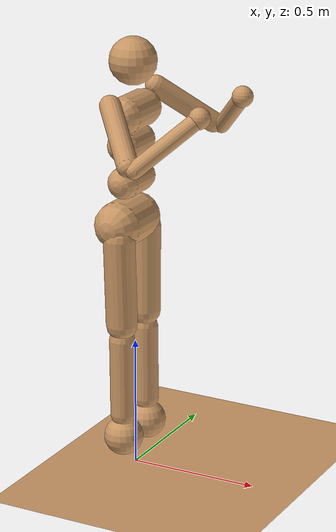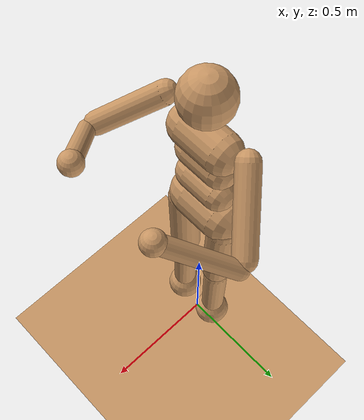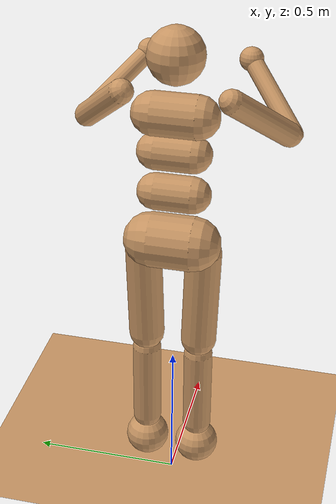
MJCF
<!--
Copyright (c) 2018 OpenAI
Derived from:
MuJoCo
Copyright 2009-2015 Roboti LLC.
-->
<mujoco model='humanoid (v1.31)'>
    <compiler inertiafromgeom='true' angle='degree'/>

    <default>
        <joint limited='true' damping='1' armature='0'  />
        <geom contype='1' conaffinity='1' condim='1' rgba='0.8 0.6 .4 1'
        	margin="0.001" solref=".02 1" solimp=".8 .8 .01" material="geom"/>
        <motor ctrlrange='-.4 .4' ctrllimited='true'/>
    </default>

    <asset>
        <texture type="skybox" builtin="gradient" width="100" height="100" rgb1=".4 .6 .8"
            rgb2="0 0 0"/>
        <texture name="texgeom" type="cube" builtin="flat" mark="cross" width="127" height="1278"
            rgb1="0.8 0.6 0.4" rgb2="0.8 0.6 0.4" markrgb="1 1 1" random="0.01"/>
        <texture name="texplane" type="2d" builtin="checker" rgb1=".2 .3 .4" rgb2=".1 0.15 0.2"
            width="100" height="100"/>

        <material name='MatPlane' reflectance='0.5' texture="texplane" texrepeat="1 1" texuniform="true"/>
        <material name='geom' texture="texgeom" texuniform="true"/>
    </asset>

    <worldbody>
        <geom name='floor' pos='0 0 0' size='10 10 0.125' type='plane' material="MatPlane" condim='3'/>

        <body name='torso' pos='0 0 1.4'>
            <light mode='trackcom' directional='false' diffuse='.8 .8 .8' specular='0.3 0.3 0.3' pos='0 0 4.0' dir='0 0 -1'/>

            <joint name='root' type='free' pos='0 0 0' limited='false' damping='0' armature='0' stiffness='0'/>
            <geom name='torso1' type='capsule' fromto='0 -.07 0 0 .07 0'  size='0.07' />
            <geom name='head' type='sphere' pos='0 0 .19' size='.09'/>
            <geom name='uwaist' type='capsule' fromto='-.01 -.06 -.12 -.01 .06 -.12' size='0.06'/>
            <body name='lwaist' pos='-.01 0 -0.260' quat='1.000 0 -0.002 0' >
                <geom name='lwaist' type='capsule' fromto='0 -.06 0 0 .06 0'  size='0.06' />
                <joint name='abdomen_z' type='hinge' pos='0 0 0.065' axis='0 0 1' range='-45 45' damping='5' stiffness='20' armature='0.02' />
                <joint name='abdomen_y' type='hinge' pos='0 0 0.065' axis='0 1 0' range='-75 30' damping='5' stiffness='10' armature='0.02' />
                <body name='pelvis' pos='0 0 -0.165' quat='1.000 0 -0.002 0' >
                    <joint name='abdomen_x' type='hinge' pos='0 0 0.1' axis='1 0 0' range='-35 35' damping='5' stiffness='10' armature='0.02' />
                    <geom name='butt' type='capsule' fromto='-.02 -.07 0 -.02 .07 0'  size='0.09' />
                    <body name='right_thigh' pos='0 -0.1 -0.04' >
                        <joint name='right_hip_x' type='hinge' pos='0 0 0' axis='1 0 0' range='-25 5'   damping='5' stiffness='10' armature='0.01' />
                        <joint name='right_hip_z' type='hinge' pos='0 0 0' axis='0 0 1' range='-60 35'  damping='5' stiffness='10' armature='0.01' />
                        <joint name='right_hip_y' type='hinge' pos='0 0 0' axis='0 1 0' range='-120 20' damping='5' stiffness='20' armature='0.008' />
                        <geom name='right_thigh1' type='capsule' fromto='0 0 0 0 0.01 -.34'  size='0.06' />
                        <body name='right_shin' pos='0 0.01 -0.403' >
                            <joint name='right_knee' type='hinge' pos='0 0 .02' axis='0 -1 0' range='-160 -2' stiffness='1' armature='0.006' />
                            <geom name='right_shin1' type='capsule' fromto='0 0 0 0 0 -.3'   size='0.049' />
                            <geom name="right_foot" type="sphere" size="0.075" pos="0 0 -0.39" user="0" />
                        </body>
                    </body>
                    <body name='left_thigh' pos='0 0.1 -0.04' >
                        <joint name='left_hip_x' type='hinge' pos='0 0 0' axis='-1 0 0' range='-25 5'  damping='5' stiffness='10' armature='0.01' />
                        <joint name='left_hip_z' type='hinge' pos='0 0 0' axis='0 0 -1' range='-60 35' damping='5' stiffness='10' armature='0.01' />
                        <joint name='left_hip_y' type='hinge' pos='0 0 0' axis='0 1 0' range='-120 20' damping='5' stiffness='20' armature='0.01' />
                        <geom name='left_thigh1' type='capsule' fromto='0 0 0 0 -0.01 -.34'  size='0.06' />
                        <body name='left_shin' pos='0 -0.01 -0.403' >
                            <joint name='left_knee' type='hinge' pos='0 0 .02' axis='0 -1 0' range='-160 -2' stiffness='1' armature='0.006' />
                            <geom name='left_shin1' type='capsule' fromto='0 0 0 0 0 -.3'   size='0.049' />
                            <geom name="left_foot" type="sphere" size="0.075" pos="0 0 -0.39" user="0" />
                        </body>
                    </body>
                </body>
            </body>
            <body name='right_upper_arm' pos='0 -0.17 0.06' >
                <joint name='right_shoulder1' type='hinge' pos='0 0 0' axis='2 1 1'  range='-85 60' damping='5' stiffness='10' armature='0.008' />
                <joint name='right_shoulder2' type='hinge' pos='0 0 0' axis='0 -1 1' range='-85 60' damping='5' stiffness='10'  armature='0.008' />
                <geom name='right_uarm1' type='capsule' fromto='0 0 0 .16 -.16 -.16'  size='0.04 0.16' />
                <body name='right_lower_arm' pos='.18 -.18 -.18' >
                    <joint name='right_elbow' type='hinge' pos='0 0 0' axis='0 -1 1' range='-90 50'  damping='5' stiffness='10' armature='0.006' />
                    <geom name='right_larm' type='capsule' fromto='0.01 0.01 0.01 .17 .17 .17'  size='0.031' />
                    <geom name='right_hand' type='sphere' pos='.18 .18 .18'  size='0.04'/>
                </body>
            </body>
            <body name='left_upper_arm' pos='0 0.17 0.06' >
                <joint name='left_shoulder1' type='hinge' pos='0 0 0' axis='2 -1 1' range='-60 85' damping='5' stiffness='10' armature='0.008' />
                <joint name='left_shoulder2' type='hinge' pos='0 0 0' axis='0 1 1' range='-60 85'  damping='5' stiffness='10' armature='0.008' />
                <geom name='left_uarm1' type='capsule' fromto='0 0 0 .16 .16 -.16'  size='0.04 0.16' />
                <body name='left_lower_arm' pos='.18 .18 -.18' >
                    <joint name='left_elbow' type='hinge' pos='0 0 0' axis='0 -1 -1' range='-90 50' damping='5' stiffness='10' armature='0.006' />
                    <geom name='left_larm' type='capsule' fromto='0.01 -0.01 0.01 .17 -.17 .17'  size='0.031' />
                    <geom name='left_hand' type='sphere' pos='.18 -.18 .18'  size='0.04'/>
                </body>
            </body>
        </body>
    </worldbody>

    <tendon>
        <fixed name='left_hipknee'>
            <joint joint='left_hip_y'  coef='-1'/>
            <joint joint='left_knee'  coef='1'/>
        </fixed>
        <fixed name='right_hipknee'>
            <joint joint='right_hip_y'  coef='-1'/>
            <joint joint='right_knee'  coef='1'/>
        </fixed>
    </tendon>

    <actuator>
        <motor name='abdomen_y'       gear='300' joint='abdomen_y' />
        <motor name='abdomen_z'       gear='300' joint='abdomen_z' />
        <motor name='abdomen_x'       gear='300' joint='abdomen_x' />
        <motor name='right_hip_x'     gear='200' joint='right_hip_x' />
        <motor name='right_hip_z'     gear='200' joint='right_hip_z' />
        <motor name='right_hip_y'     gear='600' joint='right_hip_y' />
        <motor name='right_knee'      gear='400' joint='right_knee' />
        <motor name='left_hip_x'      gear='200' joint='left_hip_x' />
        <motor name='left_hip_z'      gear='200' joint='left_hip_z' />
        <motor name='left_hip_y'      gear='600' joint='left_hip_y' />
        <motor name='left_knee'       gear='400' joint='left_knee' />
        <motor name='right_shoulder1' gear='150' joint='right_shoulder1' />  <!--- was 300 all 2x -->
        <motor name='right_shoulder2' gear='150' joint='right_shoulder2' />
        <motor name='right_elbow'     gear='100' joint='right_elbow' />
        <motor name='left_shoulder1'  gear='150' joint='left_shoulder1' />
        <motor name='left_shoulder2'  gear='150' joint='left_shoulder2' />
        <motor name='left_elbow'      gear='100' joint='left_elbow' />
    </actuator>

</mujoco>
